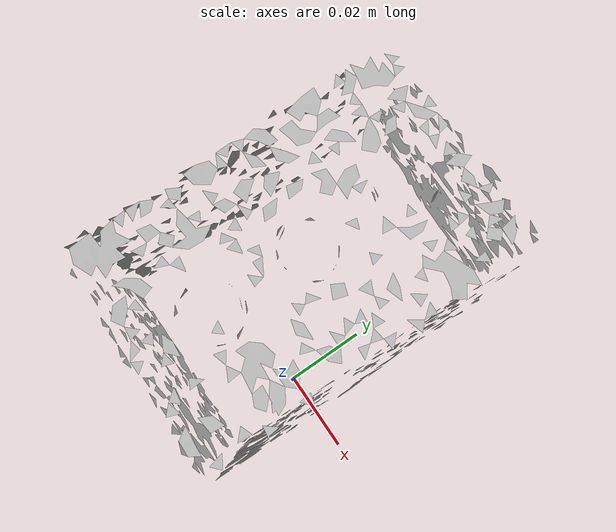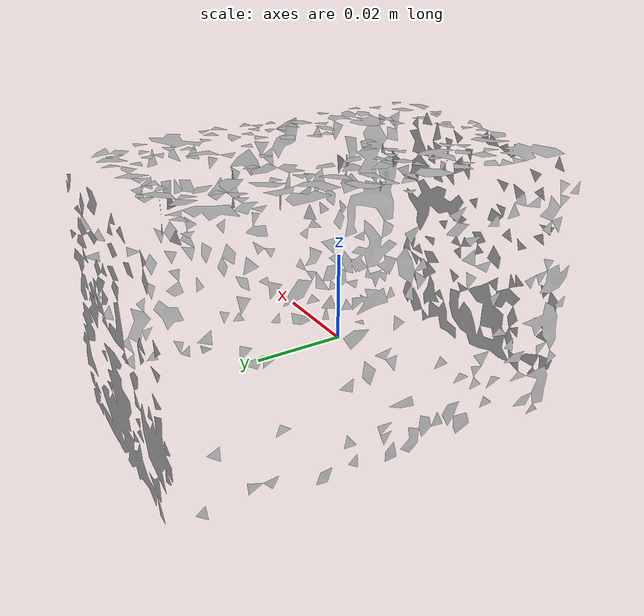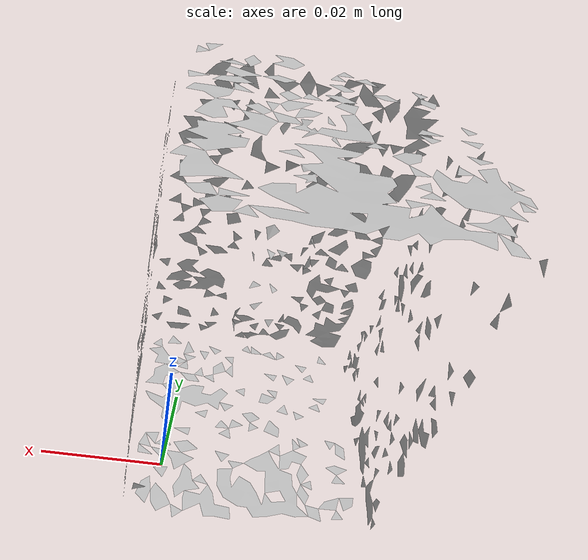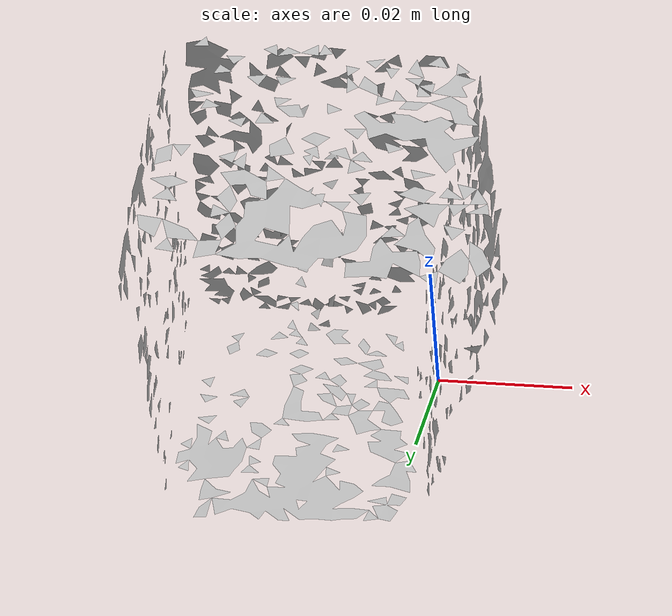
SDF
<?xml version="1.0" ?>
<sdf version="1.4">
  <model name='ycb_061_foam_brick'>
    <link name='body'>
      <inertial>
        <mass>0.028</mass>
        <pose>-0.0186253157588 0.0169548778838 0.0246441504986 0 0 0</pose>
        <inertia>
          <ixx>1.89604237917e-05</ixx>
          <ixy>-1.12774528757e-07</ixy>
          <ixz>-2.01442919496e-08</ixz>
          <iyy>1.17667183939e-05</iyy>
          <iyz>1.34278706271e-07</iyz>
          <izz>1.94437397213e-05</izz>
        </inertia>
      </inertial>
      <visual name='ycb_061_foam_brick_visual'>
        <pose>0 0 0 0 0 0</pose>
        <geometry>
          <mesh>
            <uri>model://ycb_061_foam_brick/meshes/textured.dae</uri>
          </mesh>
        </geometry>
      </visual>
      <collision name='ycb_061_foam_brick_collision'>
        <pose>0 0 0 0 0 0</pose>
        <geometry>
          <mesh>
            <uri>model://ycb_061_foam_brick/meshes/nontextured.stl</uri>
          </mesh>
        </geometry>
        <max_contacts>10</max_contacts>
      </collision>
    </link>
  </model>
</sdf>
